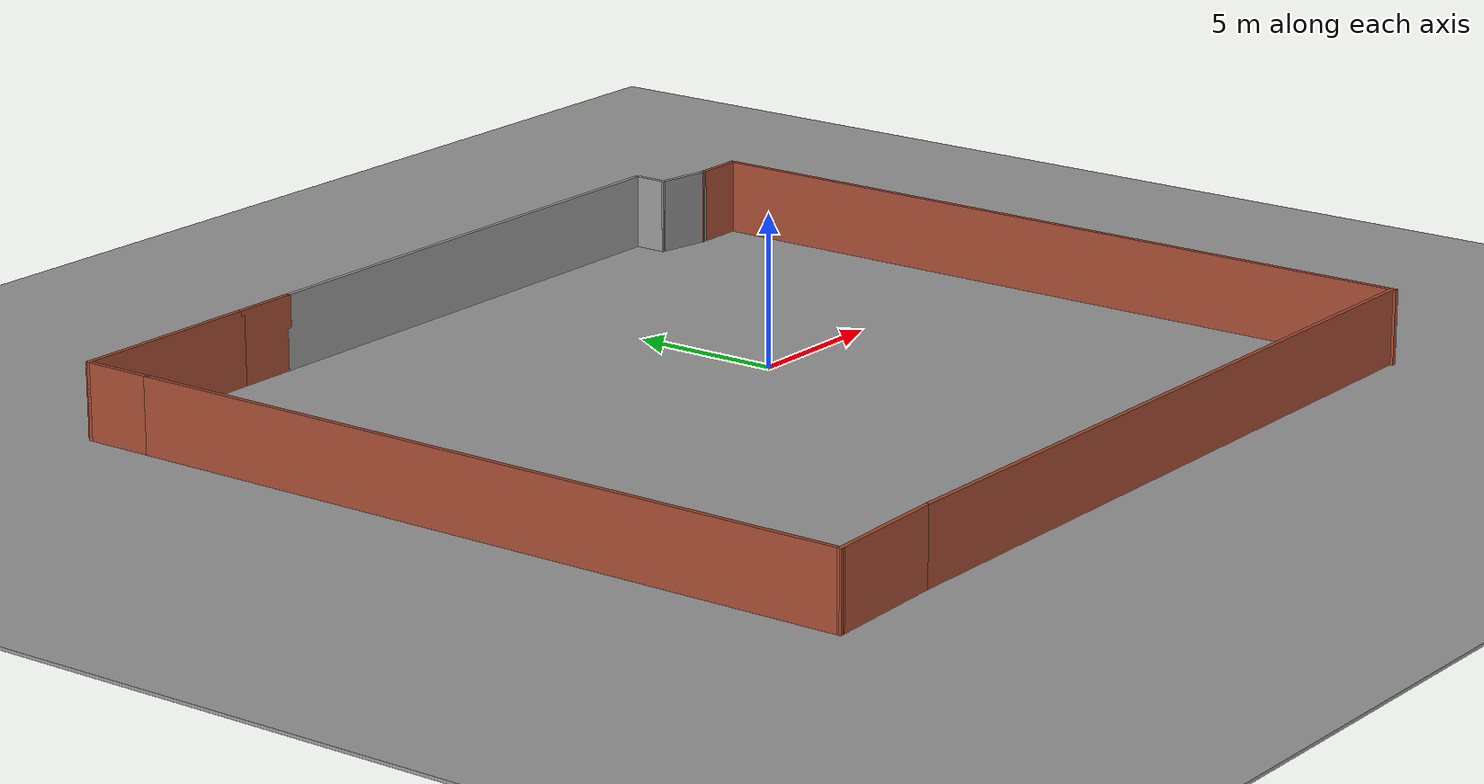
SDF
<sdf version="1.7">
 <world name="default">
  <light name="sun" type="directional">
   <pose>0 0 10 0 -0 0</pose>
   <diffuse>0.8 0.8 0.8 1</diffuse>
   <specular>0.2 0.2 0.2 1</specular>
   <attenuation>
    <range>1000</range>
    <constant>0.9</constant>
    <linear>0.01</linear>
    <quadratic>0.001</quadratic>
   </attenuation>
   <direction>-0.5 0.1 -0.9</direction>
   <spot><inner_angle>0</inner_angle><outer_angle>0</outer_angle><falloff>0</falloff></spot>
  </light>
  <model name="ground_plane">
   <static>1</static>
   <link name="link">
    <collision name="collision">
     <geometry><plane><normal>0 0 1</normal><size>100 100</size></plane></geometry>
     <surface><friction><ode><mu>100</mu><mu2>50</mu2></ode></friction></surface>
    </collision>
    <visual name="visual">
     <cast_shadows>0</cast_shadows>
     <geometry><plane><normal>0 0 1</normal><size>100 100</size></plane></geometry>
     <material>
      <script><uri>file://media/materials/scripts/gazebo.material</uri><name>Gazebo/Grey</name></script>
     </material>
    </visual>
   </link>
  </model>
  <gravity>0 0 -9.8</gravity>
  <magnetic_field>6e-06 2.3e-05 -4.2e-05</magnetic_field>
  <atmosphere type="adiabatic"/>
  <physics type="ode">
   <max_step_size>0.001</max_step_size>
   <real_time_factor>1</real_time_factor>
   <real_time_update_rate>1000</real_time_update_rate>
  </physics>
  <scene><ambient>0.4 0.4 0.4 1</ambient><background>0.7 0.7 0.7 1</background><shadows>1</shadows></scene>
  <audio><device>default</device></audio>
  <spherical_coordinates>
   <surface_model>EARTH_WGS84</surface_model>
   <latitude_deg>0</latitude_deg>
   <longitude_deg>0</longitude_deg>
   <elevation>0</elevation>
   <heading_deg>0</heading_deg>
  </spherical_coordinates>
  <model name="ground_plane_0">
   <static>1</static>
   <link name="link">
    <collision name="collision">
     <geometry><plane><normal>0 0 1</normal><size>100 100</size></plane></geometry>
     <surface><friction><ode><mu>100</mu><mu2>50</mu2></ode></friction></surface>
    </collision>
    <visual name="visual">
     <cast_shadows>0</cast_shadows>
     <geometry><plane><normal>0 0 1</normal><size>100 100</size></plane></geometry>
     <material>
      <script><uri>file://media/materials/scripts/gazebo.material</uri><name>Gazebo/Grey</name></script>
     </material>
    </visual>
   </link>
   <pose>0.0253 0.011727 0 0 -0 0</pose>
  </model>
  <model name="GardenWall">
   <pose>-3.08444 -1.98335 0 0 -0 0</pose>
   <link name="Wall_10">
    <collision name="Wall_10_Collision">
     <geometry><box><size>26 0.15 2.5</size></box></geometry>
     <pose>0 0 1.25 0 -0 0</pose>
    </collision>
    <visual name="Wall_10_Visual">
     <pose>0 0 1.25 0 -0 0</pose>
     <geometry><box><size>26 0.15 2.5</size></box></geometry>
     <material>
      <script><uri>file://media/materials/scripts/gazebo.material</uri><name>Gazebo/Bricks</name></script>
      <ambient>1 1 1 1</ambient>
     </material>
     <meta><layer>0</layer></meta>
    </visual>
    <pose>14.879 -0.61122 0 0 -0 1.5708</pose>
   </link>
   <link name="Wall_12">
    <collision name="Wall_12_Collision">
     <geometry><box><size>25.25 0.15 2.5</size></box></geometry>
     <pose>0 0 1.25 0 -0 0</pose>
    </collision>
    <visual name="Wall_12_Visual">
     <pose>0 0 1.25 0 -0 0</pose>
     <geometry><box><size>25.25 0.15 2.5</size></box></geometry>
     <material>
      <script><uri>file://media/materials/scripts/gazebo.material</uri><name>Gazebo/Bricks</name></script>
      <ambient>1 1 1 1</ambient>
     </material>
     <meta><layer>0</layer></meta>
    </visual>
    <pose>-14.876 -1.17337 0 0 -0 1.5708</pose>
   </link>
   <link name="Wall_15">
    <collision name="Wall_15_Collision">
     <geometry><box><size>4.36509 0.15 2.5</size></box></geometry>
     <pose>0 0 1.25 0 -0 0</pose>
    </collision>
    <visual name="Wall_15_Visual">
     <pose>0 0 1.25 0 -0 0</pose>
     <geometry><box><size>4.36509 0.15 2.5</size></box></geometry>
     <material>
      <script><uri>file://media/materials/scripts/gazebo.material</uri><name>Gazebo/Bricks</name></script>
      <ambient>1 1 1 1</ambient>
     </material>
     <meta><layer>0</layer></meta>
    </visual>
    <pose>-12.7706 -13.6298 0 0 -0 0.044415</pose>
   </link>
   <link name="Wall_17">
    <collision name="Wall_17_Collision">
     <geometry><box><size>1.75 0.15 2.5</size></box></geometry>
     <pose>0 0 1.25 0 -0 0</pose>
    </collision>
    <visual name="Wall_17_Visual">
     <pose>0 0 1.25 0 -0 0</pose>
     <geometry><box><size>1.75 0.15 2.5</size></box></geometry>
     <material>
      <script><uri>file://media/materials/scripts/gazebo.material</uri><name>Gazebo/Bricks</name></script>
      <ambient>1 1 1 1</ambient>
     </material>
     <meta><layer>0</layer></meta>
    </visual>
    <pose>13.9876 12.2908 0 0 -0 3.14159</pose>
   </link>
   <link name="Wall_19">
    <collision name="Wall_19_Collision">
     <geometry><box><size>2.5 0.15 2.5</size></box></geometry>
     <pose>0 0 1.25 0 -0 0</pose>
    </collision>
    <visual name="Wall_19_Visual">
     <pose>0 0 1.25 0 -0 0</pose>
     <geometry><box><size>2.5 0.15 2.5</size></box></geometry>
     <material>
      <script><uri>file://media/materials/scripts/gazebo.material</uri><name>Gazebo/Bricks</name></script>
      <ambient>1 1 1 1</ambient>
     </material>
     <meta><layer>0</layer></meta>
    </visual>
    <pose>-14.876 12.5516 0 0 -0 1.5708</pose>
   </link>
   <link name="Wall_20">
    <collision name="Wall_20_Collision">
     <geometry><box><size>6.75 0.15 2.5</size></box></geometry>
     <pose>0 0 1.25 0 -0 0</pose>
    </collision>
    <visual name="Wall_20_Visual">
     <pose>0 0 1.25 0 -0 0</pose>
     <geometry><box><size>6.75 0.15 2.5</size></box></geometry>
     <material>
      <script><uri>file://media/materials/scripts/gazebo.material</uri><name>Gazebo/Bricks</name></script>
      <ambient>1 1 1 1</ambient>
     </material>
     <meta><layer>0</layer></meta>
    </visual>
    <pose>-11.576 13.7266 0 0 -0 0</pose>
   </link>
   <link name="Wall_22">
    <collision name="Wall_22_Collision">
     <geometry><box><size>2.25 0.15 2.5</size></box></geometry>
     <pose>0 0 1.25 0 -0 0</pose>
    </collision>
    <visual name="Wall_22_Visual">
     <pose>0 0 1.25 0 -0 0</pose>
     <geometry><box><size>2.25 0.15 2.5</size></box></geometry>
     <material>
      <script><uri>file://media/materials/scripts/gazebo.material</uri><name>Gazebo/Bricks</name></script>
      <ambient>1 1 1 1</ambient>
     </material>
     <meta><layer>0</layer></meta>
    </visual>
    <pose>-7.22603 13.7266 0 0 -0 0</pose>
   </link>
   <link name="Wall_23">
    <collision name="Wall_23_Collision">
     <geometry><box><size>17.75 0.15 2.5</size></box></geometry>
     <pose>0 0 1.25 0 -0 0</pose>
    </collision>
    <visual name="Wall_23_Visual">
     <pose>0 0 1.25 0 -0 0</pose>
     <geometry><box><size>17.75 0.15 2.5</size></box></geometry>
     <material>
      <script><uri>file://media/materials/scripts/gazebo.material</uri><name>Gazebo/Grey</name></script>
      <ambient>1 1 1 1</ambient>
     </material>
     <meta><layer>0</layer></meta>
    </visual>
    <pose>2.62398 13.7266 0 0 -0 0</pose>
   </link>
   <link name="Wall_24">
    <collision name="Wall_24_Collision">
     <geometry><box><size>1.25 0.15 2.5</size></box></geometry>
     <pose>0 0 1.25 0 -0 0</pose>
    </collision>
    <visual name="Wall_24_Visual">
     <pose>0 0 1.25 0 -0 0</pose>
     <geometry><box><size>1.25 0.15 2.5</size></box></geometry>
     <material>
      <script><uri>file://media/materials/scripts/gazebo.material</uri><name>Gazebo/Grey</name></script>
      <ambient>1 1 1 1</ambient>
     </material>
     <meta><layer>0</layer></meta>
    </visual>
    <pose>11.424 13.1766 0 0 -0 -1.5708</pose>
   </link>
   <link name="Wall_25">
    <collision name="Wall_25_Collision">
     <geometry><box><size>1.94534 0.15 2.5</size></box></geometry>
     <pose>0 0 1.25 0 -0 0</pose>
    </collision>
    <visual name="Wall_25_Visual">
     <pose>0 0 1.25 0 -0 0</pose>
     <geometry><box><size>1.94534 0.15 2.5</size></box></geometry>
     <material>
      <script><uri>file://media/materials/scripts/gazebo.material</uri><name>Gazebo/Grey</name></script>
      <ambient>1 1 1 1</ambient>
     </material>
     <meta><layer>0</layer></meta>
    </visual>
    <pose>12.3058 12.4587 0 0 -0 -0.188155</pose>
   </link>
   <link name="Wall_9">
    <collision name="Wall_9_Collision">
     <geometry><box><size>25.6943 0.15 2.5</size></box></geometry>
     <pose>0 0 1.25 0 -0 0</pose>
    </collision>
    <visual name="Wall_9_Visual">
     <pose>0 0 1.25 0 -0 0</pose>
     <geometry><box><size>25.6943 0.15 2.5</size></box></geometry>
     <material>
      <script><uri>file://media/materials/scripts/gazebo.material</uri><name>Gazebo/Bricks</name></script>
      <ambient>1 1 1 1</ambient>
     </material>
     <meta><layer>0</layer></meta>
    </visual>
    <pose>2.10696 -13.4894 0 0 -0 0.003663</pose>
   </link>
   <static>1</static>
  </model>
 </world>
</sdf>
